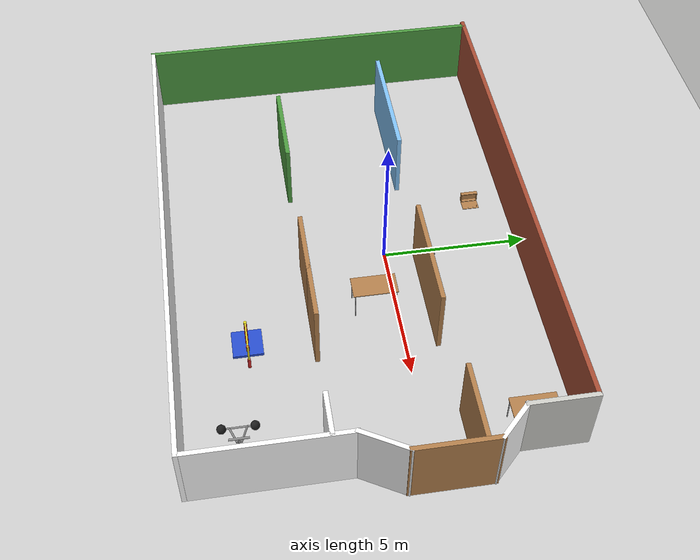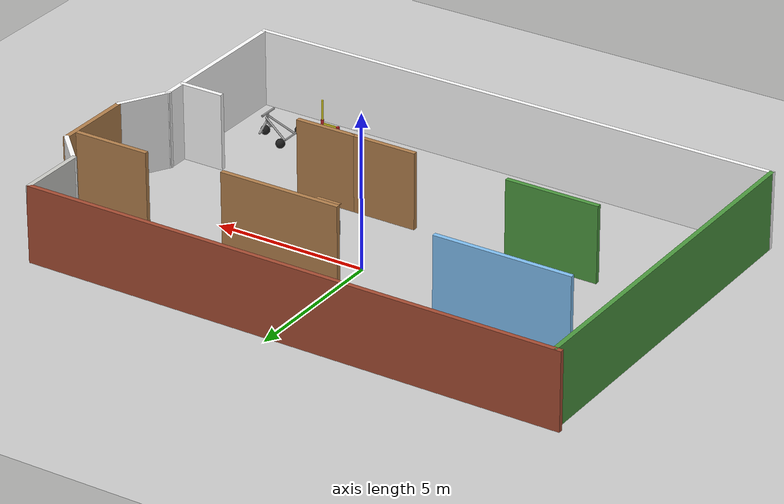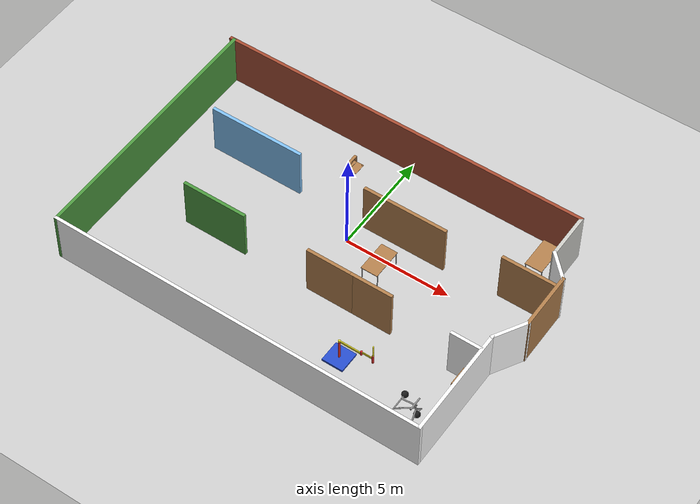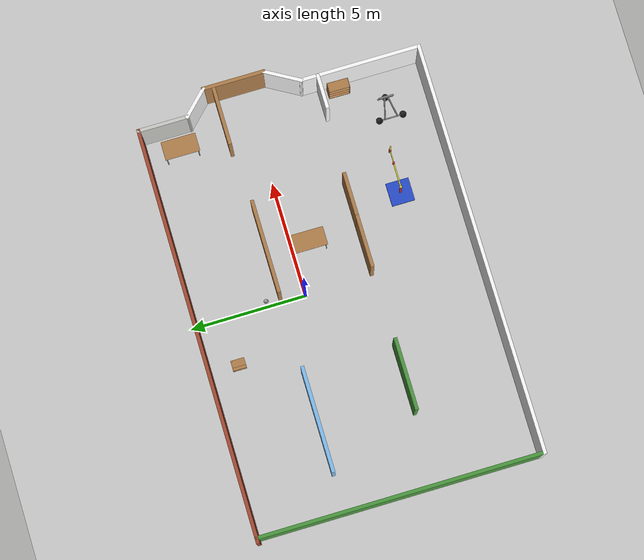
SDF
<sdf version="1.6">
 <world name="default">
  <model name="ground_plane">
   <static>1</static>
   <link name="link">
    <collision name="collision">
     <geometry><plane><normal>0 0 1</normal><size>100 100</size></plane></geometry>
     <surface>
      <contact><collide_bitmask>65535</collide_bitmask></contact>
      <friction><ode><mu>100</mu><mu2>50</mu2></ode></friction>
     </surface>
    </collision>
    <visual name="visual">
     <cast_shadows>0</cast_shadows>
     <geometry><plane><normal>0 0 1</normal><size>100 100</size></plane></geometry>
     <material>
      <script><uri>file://media/materials/scripts/gazebo.material</uri><name>Gazebo/Grey</name></script>
     </material>
    </visual>
   </link>
  </model>
  <model name="mybuilding">
   <pose>-0.077377 -1.31008 0 0 -0 0</pose>
   <link name="Wall_10">
    <collision name="Wall_10_Collision">
     <geometry><box><size>17.75 0.15 2.5</size></box></geometry>
     <pose>0 0 1.25 0 -0 0</pose>
    </collision>
    <visual name="Wall_10_Visual">
     <pose>0 0 1.25 0 -0 0</pose>
     <geometry><box><size>17.75 0.15 2.5</size></box></geometry>
     <material>
      <script><uri>file://media/materials/scripts/gazebo.material</uri><name>Gazebo/Bricks</name></script>
      <ambient>1 1 1 1</ambient>
     </material>
     <meta><layer>0</layer></meta>
    </visual>
    <pose>-0.49283 6.05016 0 0 -0 0</pose>
   </link>
   <link name="Wall_11">
    <collision name="Wall_11_Collision">
     <geometry><box><size>2.25 0.15 2.5</size></box></geometry>
     <pose>0 0 1.25 0 -0 0</pose>
    </collision>
    <visual name="Wall_11_Visual">
     <pose>0 0 1.25 0 -0 0</pose>
     <geometry><box><size>2.25 0.15 2.5</size></box></geometry>
     <material>
      <script><uri>file://media/materials/scripts/gazebo.material</uri><name>Gazebo/CeilingTiled</name></script>
      <ambient>1 1 1 1</ambient>
     </material>
     <meta><layer>0</layer></meta>
    </visual>
    <pose>8.30717 5.00016 0 0 0 -1.5708</pose>
   </link>
   <link name="Wall_12">
    <collision name="Wall_12_Collision">
     <geometry><box><size>1.5 0.15 2.5</size></box></geometry>
     <pose>0 0 1.25 0 -0 0</pose>
    </collision>
    <visual name="Wall_12_Visual">
     <pose>0 0 1.25 0 -0 0</pose>
     <geometry><box><size>1.5 0.15 2.5</size></box></geometry>
     <material>
      <script><uri>file://media/materials/scripts/gazebo.material</uri><name>Gazebo/Secondary</name></script>
      <ambient>1 1 1 1</ambient>
     </material>
     <meta><layer>0</layer></meta>
    </visual>
    <pose>8.78447 3.47287 0 0 0 -0.785398</pose>
   </link>
   <link name="Wall_13">
    <collision name="Wall_13_Collision">
     <geometry><box><size>2.75 0.15 2.5</size></box></geometry>
     <pose>0 0 1.25 0 -0 0</pose>
    </collision>
    <visual name="Wall_13_Visual">
     <pose>0 0 1.25 0 -0 0</pose>
     <geometry><box><size>2.75 0.15 2.5</size></box></geometry>
     <material>
      <script><uri>file://media/materials/scripts/gazebo.material</uri><name>Gazebo/WoodPallet</name></script>
      <ambient>1 1 1 1</ambient>
     </material>
     <meta><layer>0</layer></meta>
    </visual>
    <pose>9.26177 1.69557 0 0 0 -1.5708</pose>
   </link>
   <link name="Wall_14">
    <collision name="Wall_14_Collision">
     <geometry><box><size>1.75 0.15 2.5</size></box></geometry>
     <pose>0 0 1.25 0 -0 0</pose>
    </collision>
    <visual name="Wall_14_Visual">
     <pose>0 0 1.25 0 -0 0</pose>
     <geometry><box><size>1.75 0.15 2.5</size></box></geometry>
     <material>
      <script><uri>file://media/materials/scripts/gazebo.material</uri><name>Gazebo/Primary</name></script>
      <ambient>1 1 1 1</ambient>
     </material>
     <meta><layer>0</layer></meta>
    </visual>
    <pose>8.86176 -0.297251 0 0 0 -2.0944</pose>
   </link>
   <link name="Wall_15">
    <collision name="Wall_15_Collision">
     <geometry><box><size>5.25 0.15 2.5</size></box></geometry>
     <pose>0 0 1.25 0 -0 0</pose>
    </collision>
    <visual name="Wall_15_Visual">
     <pose>0 0 1.25 0 -0 0</pose>
     <geometry><box><size>5.25 0.15 2.5</size></box></geometry>
     <material>
      <script><uri>file://media/materials/scripts/gazebo.material</uri><name>Gazebo/Tertiary</name></script>
      <ambient>1 1 1 1</ambient>
     </material>
     <meta><layer>0</layer></meta>
    </visual>
    <pose>8.46176 -3.54007 0 0 0 -1.5708</pose>
   </link>
   <link name="Wall_16">
    <collision name="Wall_16_Collision">
     <geometry><box><size>17.75 0.15 2.5</size></box></geometry>
     <pose>0 0 1.25 0 -0 0</pose>
    </collision>
    <visual name="Wall_16_Visual">
     <pose>0 0 1.25 0 -0 0</pose>
     <geometry><box><size>17.75 0.15 2.5</size></box></geometry>
     <material>
      <script><uri>file://media/materials/scripts/gazebo.material</uri><name>Gazebo/CoM</name></script>
      <ambient>1 1 1 1</ambient>
     </material>
     <meta><layer>0</layer></meta>
    </visual>
    <pose>-0.338236 -6.09007 0 0 -0 3.14159</pose>
   </link>
   <link name="Wall_17">
    <collision name="Wall_17_Collision">
     <geometry><box><size>12.25 0.15 2.5</size></box></geometry>
     <pose>0 0 1.25 0 -0 0</pose>
    </collision>
    <visual name="Wall_17_Visual">
     <pose>0 0 1.25 0 -0 0</pose>
     <geometry><box><size>12.25 0.15 2.5</size></box></geometry>
     <material>
      <script><uri>file://media/materials/scripts/gazebo.material</uri><name>Gazebo/Grass</name></script>
      <ambient>1 1 1 1</ambient>
     </material>
     <meta><layer>0</layer></meta>
    </visual>
    <pose>-9.13824 -0.040072 0 0 -0 1.5708</pose>
   </link>
   <link name="Wall_27">
    <collision name="Wall_27_Collision">
     <geometry><box><size>3.067 0.15 2.5</size></box></geometry>
     <pose>0 0 1.25 0 -0 0</pose>
    </collision>
    <visual name="Wall_27_Visual">
     <pose>0 0 1.25 0 -0 0</pose>
     <geometry><box><size>3.067 0.15 2.5</size></box></geometry>
     <material>
      <script><uri>file://media/materials/scripts/gazebo.material</uri><name>Gazebo/Grass</name></script>
      <ambient>1 1 1 1</ambient>
     </material>
     <meta><layer>0</layer></meta>
    </visual>
    <pose>-4.48112 -1.63592 0 0 -0 3.14159</pose>
   </link>
   <link name="Wall_45">
    <collision name="Wall_45_Collision">
     <geometry><box><size>2.25 0.15 2.5</size></box></geometry>
     <pose>0 0 1.25 0 -0 0</pose>
    </collision>
    <visual name="Wall_45_Visual">
     <pose>0 0 1.25 0 -0 0</pose>
     <geometry><box><size>2.25 0.15 2.5</size></box></geometry>
     <material>
      <script><uri>file://media/materials/scripts/gazebo.material</uri><name>Gazebo/WoodPallet</name></script>
      <ambient>1 1 1 1</ambient>
     </material>
     <meta><layer>0</layer></meta>
    </visual>
    <pose>1.24538 -1.59592 0 0 -0 3.14159</pose>
   </link>
   <link name="Wall_47">
    <collision name="Wall_47_Collision">
     <geometry><box><size>2 0.15 2.5</size></box></geometry>
     <pose>0 0 1.25 0 -0 0</pose>
    </collision>
    <visual name="Wall_47_Visual">
     <pose>0 0 1.25 0 -0 0</pose>
     <geometry><box><size>2 0.15 2.5</size></box></geometry>
     <material>
      <script><uri>file://media/materials/scripts/gazebo.material</uri><name>Gazebo/WoodFloor</name></script>
      <ambient>1 1 1 1</ambient>
     </material>
     <meta><layer>0</layer></meta>
    </visual>
    <pose>3.22038 -1.59592 0 0 -0 0</pose>
   </link>
   <link name="Wall_49">
    <collision name="Wall_49_Collision">
     <geometry><box><size>1.5 0.15 2.5</size></box></geometry>
     <pose>0 0 1.25 0 -0 0</pose>
    </collision>
    <visual name="Wall_49_Visual">
     <pose>0 0 1.25 0 -0 0</pose>
     <geometry><box><size>1.5 0.15 2.5</size></box></geometry>
     <material>
      <script><uri>file://media/materials/scripts/gazebo.material</uri><name>Gazebo/Footway</name></script>
      <ambient>1 1 1 1</ambient>
     </material>
     <meta><layer>0</layer></meta>
    </visual>
    <pose>7.76668 -1.71731 0 0 -0 0</pose>
   </link>
   <link name="Wall_53">
    <collision name="Wall_53_Collision">
     <geometry><box><size>2.5 0.15 2.5</size></box></geometry>
     <pose>0 0 1.25 0 -0 0</pose>
    </collision>
    <visual name="Wall_53_Visual">
     <pose>0 0 1.25 0 -0 0</pose>
     <geometry><box><size>2.5 0.15 2.5</size></box></geometry>
     <material>
      <script><uri>file://media/materials/scripts/gazebo.material</uri><name>Gazebo/Wood</name></script>
      <ambient>1 1 1 1</ambient>
     </material>
     <meta><layer>0</layer></meta>
    </visual>
    <pose>7.94303 2.57098 0 0 -0 0</pose>
   </link>
   <link name="Wall_55">
    <collision name="Wall_55_Collision">
     <geometry><box><size>4 0.15 2.5</size></box></geometry>
     <pose>0 0 1.25 0 -0 0</pose>
    </collision>
    <visual name="Wall_55_Visual">
     <pose>0 0 1.25 0 -0 0</pose>
     <geometry><box><size>4 0.15 2.5</size></box></geometry>
     <material>
      <script><uri>file://media/materials/scripts/gazebo.material</uri><name>Gazebo/Wood</name></script>
      <ambient>1 1 1 1</ambient>
     </material>
     <meta><layer>0</layer></meta>
    </visual>
    <pose>2.1875 2.3687 0 0 -0 3.14159</pose>
   </link>
   <link name="Wall_66">
    <collision name="Wall_66_Collision">
     <geometry><box><size>4.5 0.15 2.5</size></box></geometry>
     <pose>0 0 1.25 0 -0 0</pose>
    </collision>
    <visual name="Wall_66_Visual">
     <pose>0 0 1.25 0 -0 0</pose>
     <geometry><box><size>4.5 0.15 2.5</size></box></geometry>
     <material>
      <script><uri>file://media/materials/scripts/gazebo.material</uri><name>Gazebo/SkyBlue</name></script>
      <ambient>1 1 1 1</ambient>
     </material>
     <meta><layer>0</layer></meta>
    </visual>
    <pose>-5.23767 2.32825 0 0 -0 3.14159</pose>
   </link>
   <static>1</static>
  </model>
  <model name="table_clone_2">
   <static>1</static>
   <link name="link">
    <collision name="surface">
     <pose>0 0 1 0 -0 0</pose>
     <geometry><box><size>1.5 0.8 0.03</size></box></geometry>
     <surface><friction><ode><mu>0.6</mu><mu2>0.6</mu2></ode></friction></surface>
    </collision>
    <visual name="visual1">
     <pose>0 0 1 0 -0 0</pose>
     <geometry><box><size>1.5 0.8 0.03</size></box></geometry>
     <material>
      <script><uri>file://media/materials/scripts/gazebo.material</uri><name>Gazebo/Wood</name></script>
     </material>
    </visual>
    <collision name="front_left_leg">
     <pose>0.68 0.38 0.5 0 -0 0</pose>
     <geometry><cylinder><radius>0.02</radius><length>1</length></cylinder></geometry>
    </collision>
    <visual name="front_left_leg">
     <pose>0.68 0.38 0.5 0 -0 0</pose>
     <geometry><cylinder><radius>0.02</radius><length>1</length></cylinder></geometry>
     <material>
      <script><uri>file://media/materials/scripts/gazebo.material</uri><name>Gazebo/Grey</name></script>
     </material>
    </visual>
    <collision name="front_right_leg">
     <pose>0.68 -0.38 0.5 0 -0 0</pose>
     <geometry><cylinder><radius>0.02</radius><length>1</length></cylinder></geometry>
    </collision>
    <visual name="front_right_leg">
     <pose>0.68 -0.38 0.5 0 -0 0</pose>
     <geometry><cylinder><radius>0.02</radius><length>1</length></cylinder></geometry>
     <material>
      <script><uri>file://media/materials/scripts/gazebo.material</uri><name>Gazebo/Grey</name></script>
     </material>
    </visual>
    <collision name="back_right_leg">
     <pose>-0.68 -0.38 0.5 0 -0 0</pose>
     <geometry><cylinder><radius>0.02</radius><length>1</length></cylinder></geometry>
    </collision>
    <visual name="back_right_leg">
     <pose>-0.68 -0.38 0.5 0 -0 0</pose>
     <geometry><cylinder><radius>0.02</radius><length>1</length></cylinder></geometry>
     <material>
      <script><uri>file://media/materials/scripts/gazebo.material</uri><name>Gazebo/Grey</name></script>
     </material>
    </visual>
    <collision name="back_left_leg">
     <pose>-0.68 0.38 0.5 0 -0 0</pose>
     <geometry><cylinder><radius>0.02</radius><length>1</length></cylinder></geometry>
    </collision>
    <visual name="back_left_leg">
     <pose>-0.68 0.38 0.5 0 -0 0</pose>
     <geometry><cylinder><radius>0.02</radius><length>1</length></cylinder></geometry>
     <material>
      <script><uri>file://media/materials/scripts/gazebo.material</uri><name>Gazebo/Grey</name></script>
     </material>
    </visual>
   </link>
   <pose>2.09551 -0.734988 0 0 0 -1.57312</pose>
  </model>
  <model name="table_clone_4">
   <static>1</static>
   <link name="link">
    <collision name="surface">
     <pose>0 0 1 0 -0 0</pose>
     <geometry><box><size>1.5 0.8 0.03</size></box></geometry>
     <surface><friction><ode><mu>0.6</mu><mu2>0.6</mu2></ode></friction></surface>
    </collision>
    <visual name="visual1">
     <pose>0 0 1 0 -0 0</pose>
     <geometry><box><size>1.5 0.8 0.03</size></box></geometry>
     <material>
      <script><uri>file://media/materials/scripts/gazebo.material</uri><name>Gazebo/Wood</name></script>
     </material>
    </visual>
    <collision name="front_left_leg">
     <pose>0.68 0.38 0.5 0 -0 0</pose>
     <geometry><cylinder><radius>0.02</radius><length>1</length></cylinder></geometry>
    </collision>
    <visual name="front_left_leg">
     <pose>0.68 0.38 0.5 0 -0 0</pose>
     <geometry><cylinder><radius>0.02</radius><length>1</length></cylinder></geometry>
     <material>
      <script><uri>file://media/materials/scripts/gazebo.material</uri><name>Gazebo/Grey</name></script>
     </material>
    </visual>
    <collision name="front_right_leg">
     <pose>0.68 -0.38 0.5 0 -0 0</pose>
     <geometry><cylinder><radius>0.02</radius><length>1</length></cylinder></geometry>
    </collision>
    <visual name="front_right_leg">
     <pose>0.68 -0.38 0.5 0 -0 0</pose>
     <geometry><cylinder><radius>0.02</radius><length>1</length></cylinder></geometry>
     <material>
      <script><uri>file://media/materials/scripts/gazebo.material</uri><name>Gazebo/Grey</name></script>
     </material>
    </visual>
    <collision name="back_right_leg">
     <pose>-0.68 -0.38 0.5 0 -0 0</pose>
     <geometry><cylinder><radius>0.02</radius><length>1</length></cylinder></geometry>
    </collision>
    <visual name="back_right_leg">
     <pose>-0.68 -0.38 0.5 0 -0 0</pose>
     <geometry><cylinder><radius>0.02</radius><length>1</length></cylinder></geometry>
     <material>
      <script><uri>file://media/materials/scripts/gazebo.material</uri><name>Gazebo/Grey</name></script>
     </material>
    </visual>
    <collision name="back_left_leg">
     <pose>-0.68 0.38 0.5 0 -0 0</pose>
     <geometry><cylinder><radius>0.02</radius><length>1</length></cylinder></geometry>
    </collision>
    <visual name="back_left_leg">
     <pose>-0.68 0.38 0.5 0 -0 0</pose>
     <geometry><cylinder><radius>0.02</radius><length>1</length></cylinder></geometry>
     <material>
      <script><uri>file://media/materials/scripts/gazebo.material</uri><name>Gazebo/Grey</name></script>
     </material>
    </visual>
   </link>
   <pose>7.4382 3.26988 0 0 0 -1.57312</pose>
  </model>
  <model name="my_sphere">
   <link name="link">
    <inertial>
     <mass>1</mass>
     <inertia><ixx>0.1</ixx><ixy>0</ixy><ixz>0</ixz><iyy>0.1</iyy><iyz>0</iyz><izz>0.1</izz></inertia>
    </inertial>
    <visual name="visual">
     <geometry><sphere><radius>0.1</radius></sphere></geometry>
     <material>
      <script><name>Gazebo/Grey</name><uri>file://media/materials/scripts/gazebo.material</uri></script>
      <shader type="pixel"><normal_map>__default__</normal_map></shader>
      <ambient>1 1 1 1</ambient>
      <diffuse>1 1 1 1</diffuse>
      <specular>1 1 1 1</specular>
      <emissive>1 1 1 1</emissive>
     </material>
    </visual>
    <collision name="collision">
     <geometry><sphere><radius>0.1</radius></sphere></geometry>
     <surface>
      <friction>
       <ode><mu>1</mu><mu2>1</mu2><fdir1>0 0 0</fdir1><slip1>0</slip1><slip2>0</slip2></ode>
       <torsional>
        <coefficient>1</coefficient>
        <patch_radius>0</patch_radius>
        <surface_radius>0</surface_radius>
        <use_patch_radius>1</use_patch_radius>
        <ode><slip>0</slip></ode>
       </torsional>
      </friction>
      <bounce><restitution_coefficient>0</restitution_coefficient><threshold>1e+06</threshold></bounce>
      <contact>
       <collide_without_contact>0</collide_without_contact>
       <collide_without_contact_bitmask>1</collide_without_contact_bitmask>
       <collide_bitmask>1</collide_bitmask>
       <ode>
        <soft_cfm>0</soft_cfm>
        <soft_erp>0.2</soft_erp>
        <kp>1e+13</kp>
        <kd>1</kd>
        <max_vel>0.01</max_vel>
        <min_depth>0</min_depth>
       </ode>
       <bullet>
        <split_impulse>1</split_impulse>
        <split_impulse_penetration_threshold>-0.01</split_impulse_penetration_threshold>
        <soft_cfm>0</soft_cfm>
        <soft_erp>0.2</soft_erp>
        <kp>1e+13</kp>
        <kd>1</kd>
       </bullet>
      </contact>
     </surface>
    </collision>
   </link>
   <static>0</static>
   <pose>0.251743 1.65501 0.1 0 -0 0</pose>
  </model>
  <model name="simple_arm">
   <link name="arm_base">
    <inertial>
     <pose>0 0 0.00099 0 -0 0</pose>
     <inertia><ixx>1.11</ixx><ixy>0</ixy><ixz>0</ixz><iyy>100.11</iyy><iyz>0</iyz><izz>1.01</izz></inertia>
     <mass>101</mass>
    </inertial>
    <collision name="arm_base_geom">
     <pose>0 0 0.05 0 -0 0</pose>
     <geometry><box><size>1 1 0.1</size></box></geometry>
    </collision>
    <visual name="arm_base_geom_visual">
     <pose>0 0 0.05 0 -0 0</pose>
     <geometry><box><size>1 1 0.1</size></box></geometry>
     <material>
      <script><uri>file://media/materials/scripts/gazebo.material</uri><name>Gazebo/Blue</name></script>
     </material>
    </visual>
    <collision name="arm_base_geom_arm_trunk">
     <pose>0 0 0.6 0 -0 0</pose>
     <geometry><cylinder><radius>0.05</radius><length>1</length></cylinder></geometry>
    </collision>
    <visual name="arm_base_geom_arm_trunk_visual">
     <pose>0 0 0.6 0 -0 0</pose>
     <geometry><cylinder><radius>0.05</radius><length>1</length></cylinder></geometry>
     <material>
      <script><uri>file://media/materials/scripts/gazebo.material</uri><name>Gazebo/Red</name></script>
     </material>
    </visual>
   </link>
   <link name="arm_shoulder_pan">
    <pose>0 0 1.1 0 -0 0</pose>
    <inertial>
     <pose>0.045455 0 0 0 -0 0</pose>
     <inertia><ixx>0.011</ixx><ixy>0</ixy><ixz>0</ixz><iyy>0.0225</iyy><iyz>0</iyz><izz>0.0135</izz></inertia>
     <mass>1.1</mass>
    </inertial>
    <collision name="arm_shoulder_pan_geom">
     <pose>0 0 0.05 0 -0 0</pose>
     <geometry><cylinder><radius>0.05</radius><length>0.1</length></cylinder></geometry>
    </collision>
    <visual name="arm_shoulder_pan_geom_visual">
     <pose>0 0 0.05 0 -0 0</pose>
     <geometry><cylinder><radius>0.05</radius><length>0.1</length></cylinder></geometry>
     <material>
      <script><uri>file://media/materials/scripts/gazebo.material</uri><name>Gazebo/Yellow</name></script>
     </material>
    </visual>
    <collision name="arm_shoulder_pan_geom_arm_shoulder">
     <pose>0.55 0 0.05 0 -0 0</pose>
     <geometry><box><size>1 0.05 0.1</size></box></geometry>
    </collision>
    <visual name="arm_shoulder_pan_geom_arm_shoulder_visual">
     <pose>0.55 0 0.05 0 -0 0</pose>
     <geometry><box><size>1 0.05 0.1</size></box></geometry>
     <material>
      <script><uri>file://media/materials/scripts/gazebo.material</uri><name>Gazebo/Yellow</name></script>
     </material>
    </visual>
   </link>
   <link name="arm_elbow_pan">
    <pose>1.05 0 1.1 0 -0 0</pose>
    <inertial>
     <pose>0.0875 0 0.083333 0 -0 0</pose>
     <inertia>
      <ixx>0.031</ixx>
      <ixy>0</ixy>
      <ixz>0.005</ixz>
      <iyy>0.07275</iyy>
      <iyz>0</iyz>
      <izz>0.04475</izz>
     </inertia>
     <mass>1.2</mass>
    </inertial>
    <collision name="arm_elbow_pan_geom">
     <pose>0 0 0.1 0 -0 0</pose>
     <geometry><cylinder><radius>0.05</radius><length>0.2</length></cylinder></geometry>
    </collision>
    <visual name="arm_elbow_pan_geom_visual">
     <pose>0 0 0.1 0 -0 0</pose>
     <geometry><cylinder><radius>0.05</radius><length>0.2</length></cylinder></geometry>
     <material>
      <script><uri>file://media/materials/scripts/gazebo.material</uri><name>Gazebo/Red</name></script>
     </material>
    </visual>
    <collision name="arm_elbow_pan_geom_arm_elbow">
     <pose>0.3 0 0.15 0 -0 0</pose>
     <geometry><box><size>0.5 0.03 0.1</size></box></geometry>
    </collision>
    <visual name="arm_elbow_pan_geom_arm_elbow_visual">
     <pose>0.3 0 0.15 0 -0 0</pose>
     <geometry><box><size>0.5 0.03 0.1</size></box></geometry>
     <material>
      <script><uri>file://media/materials/scripts/gazebo.material</uri><name>Gazebo/Yellow</name></script>
     </material>
    </visual>
    <collision name="arm_elbow_pan_geom_arm_wrist">
     <pose>0.55 0 0.15 0 -0 0</pose>
     <geometry><cylinder><radius>0.05</radius><length>0.3</length></cylinder></geometry>
    </collision>
    <visual name="arm_elbow_pan_geom_arm_wrist_visual">
     <pose>0.55 0 0.15 0 -0 0</pose>
     <geometry><cylinder><radius>0.05</radius><length>0.3</length></cylinder></geometry>
     <material>
      <script><uri>file://media/materials/scripts/gazebo.material</uri><name>Gazebo/Red</name></script>
     </material>
    </visual>
   </link>
   <link name="arm_wrist_lift">
    <pose>1.6 0 1.05 0 -0 0</pose>
    <inertial>
     <inertia><ixx>0.01</ixx><ixy>0</ixy><ixz>0</ixz><iyy>0.01</iyy><iyz>0</iyz><izz>0.001</izz></inertia>
     <mass>0.1</mass>
    </inertial>
    <collision name="arm_wrist_lift_geom">
     <pose>0 0 0.5 0 -0 0</pose>
     <geometry><cylinder><radius>0.03</radius><length>1</length></cylinder></geometry>
    </collision>
    <visual name="arm_wrist_lift_geom_visual">
     <pose>0 0 0.5 0 -0 0</pose>
     <geometry><cylinder><radius>0.03</radius><length>1</length></cylinder></geometry>
     <material>
      <script><uri>file://media/materials/scripts/gazebo.material</uri><name>Gazebo/Yellow</name></script>
     </material>
    </visual>
   </link>
   <link name="arm_wrist_roll">
    <pose>1.6 0 1 0 -0 0</pose>
    <inertial>
     <inertia><ixx>0.01</ixx><ixy>0</ixy><ixz>0</ixz><iyy>0.01</iyy><iyz>0</iyz><izz>0.001</izz></inertia>
     <mass>0.1</mass>
    </inertial>
    <collision name="arm_wrist_roll_geom">
     <pose>0 0 0.025 0 -0 0</pose>
     <geometry><cylinder><radius>0.05</radius><length>0.05</length></cylinder></geometry>
    </collision>
    <visual name="arm_wrist_roll_geom_visual">
     <pose>0 0 0.025 0 -0 0</pose>
     <geometry><cylinder><radius>0.05</radius><length>0.05</length></cylinder></geometry>
     <material>
      <script><uri>file://media/materials/scripts/gazebo.material</uri><name>Gazebo/Red</name></script>
     </material>
    </visual>
   </link>
   <joint name="arm_shoulder_pan_joint" type="revolute">
    <parent>arm_base</parent>
    <child>arm_shoulder_pan</child>
    <axis>
     <dynamics>
      <damping>1</damping>
      <friction>0</friction>
      <spring_reference>0</spring_reference>
      <spring_stiffness>0</spring_stiffness>
     </dynamics>
     <xyz>0 0 1</xyz>
     <use_parent_model_frame>1</use_parent_model_frame>
     <limit><lower>-1e+16</lower><upper>1e+16</upper></limit>
    </axis>
   </joint>
   <joint name="arm_elbow_pan_joint" type="revolute">
    <parent>arm_shoulder_pan</parent>
    <child>arm_elbow_pan</child>
    <axis>
     <dynamics>
      <damping>1</damping>
      <friction>0</friction>
      <spring_reference>0</spring_reference>
      <spring_stiffness>0</spring_stiffness>
     </dynamics>
     <xyz>0 0 1</xyz>
     <use_parent_model_frame>1</use_parent_model_frame>
     <limit><lower>-1e+16</lower><upper>1e+16</upper></limit>
    </axis>
   </joint>
   <joint name="arm_wrist_lift_joint" type="prismatic">
    <parent>arm_elbow_pan</parent>
    <child>arm_wrist_lift</child>
    <axis>
     <dynamics>
      <damping>1</damping>
      <friction>0</friction>
      <spring_reference>0</spring_reference>
      <spring_stiffness>0</spring_stiffness>
     </dynamics>
     <limit><lower>-0.8</lower><upper>0.1</upper></limit>
     <xyz>0 0 1</xyz>
     <use_parent_model_frame>1</use_parent_model_frame>
    </axis>
   </joint>
   <joint name="arm_wrist_roll_joint" type="revolute">
    <parent>arm_wrist_lift</parent>
    <child>arm_wrist_roll</child>
    <axis>
     <dynamics>
      <damping>1</damping>
      <friction>0</friction>
      <spring_reference>0</spring_reference>
      <spring_stiffness>0</spring_stiffness>
     </dynamics>
     <limit><lower>-2.99999</lower><upper>2.99999</upper></limit>
     <xyz>0 0 1</xyz>
     <use_parent_model_frame>1</use_parent_model_frame>
    </axis>
   </joint>
   <pose>3.12467 -5.08041 0 0 0 -0.000925</pose>
  </model>
  <model name="trisphere_cycle">
   <link name="frame">
    <pose>-0.408559 0 0.385023 0 -0.522021 0</pose>
    <inertial>
     <mass>10</mass>
     <inertia><ixx>0.228</ixx><iyy>0.743521</iyy><izz>0.965521</izz><ixy>0</ixy><ixz>0</ixz><iyz>0</iyz></inertia>
    </inertial>
    <collision name="axle_collision">
     <pose>-0.471335 0 0 1.5708 -0 0</pose>
     <geometry><cylinder><length>1.03923</length><radius>0.03</radius></cylinder></geometry>
    </collision>
    <visual name="axle_visual">
     <pose>-0.471335 0 0 1.5708 -0 0</pose>
     <geometry><cylinder><length>1.03923</length><radius>0.03</radius></cylinder></geometry>
     <material>
      <script><uri>file://media/materials/scripts/gazebo.material</uri><name>Gazebo/Grey</name></script>
     </material>
    </visual>
    <collision name="frame_left_collision">
     <pose>0 0.171552 0 2.986 1.57079 2.76675</pose>
     <geometry><cylinder><length>1.00317</length><radius>0.03</radius></cylinder></geometry>
    </collision>
    <visual name="frame_left_visual">
     <pose>0 0.171552 0 2.986 1.57079 2.76675</pose>
     <geometry><cylinder><length>1.00317</length><radius>0.03</radius></cylinder></geometry>
     <material>
      <script><uri>file://media/materials/scripts/gazebo.material</uri><name>Gazebo/Grey</name></script>
     </material>
    </visual>
    <collision name="frame_right_collision">
     <pose>0 -0.171552 0 -2.986 1.57079 -2.76675</pose>
     <geometry><cylinder><length>1.00317</length><radius>0.03</radius></cylinder></geometry>
    </collision>
    <visual name="frame_right_visual">
     <pose>0 -0.171552 0 -2.986 1.57079 -2.76675</pose>
     <geometry><cylinder><length>1.00317</length><radius>0.03</radius></cylinder></geometry>
     <material>
      <script><uri>file://media/materials/scripts/gazebo.material</uri><name>Gazebo/Grey</name></script>
     </material>
    </visual>
   </link>
   <link name="fork">
    <pose>0.041441 0 0.385023 0 -0.174533 0</pose>
    <inertial>
     <mass>3</mass>
     <inertia>
      <ixx>0.158203</ixx>
      <iyy>0.0583594</iyy>
      <izz>0.102656</izz>
      <ixy>0</ixy>
      <ixz>0</ixz>
      <iyz>0</iyz>
     </inertia>
    </inertial>
    <collision name="handlebars_collision">
     <pose>0 0 0.397748 1.5708 -0 0</pose>
     <geometry><cylinder><length>0.636396</length><radius>0.0375</radius></cylinder></geometry>
    </collision>
    <visual name="handlebars_visual">
     <pose>0 0 0.397748 1.5708 -0 0</pose>
     <geometry><cylinder><length>0.636396</length><radius>0.0375</radius></cylinder></geometry>
     <material>
      <script><uri>file://media/materials/scripts/gazebo.material</uri><name>Gazebo/Grey</name></script>
     </material>
    </visual>
    <collision name="headtube_collision">
     <pose>0 0 0.238649 0 -0 0</pose>
     <geometry><cylinder><length>0.318198</length><radius>0.0375</radius></cylinder></geometry>
    </collision>
    <visual name="headtube_visual">
     <pose>0 0 0.238649 0 -0 0</pose>
     <geometry><cylinder><length>0.318198</length><radius>0.0375</radius></cylinder></geometry>
     <material>
      <script><uri>file://media/materials/scripts/gazebo.material</uri><name>Gazebo/Grey</name></script>
     </material>
    </visual>
    <collision name="spindle_collision">
     <pose>0 0 -0.238649 1.5708 -0 0</pose>
     <geometry><cylinder><length>0.636396</length><radius>0.015</radius></cylinder></geometry>
    </collision>
    <visual name="spindle_visual">
     <pose>0 0 -0.238649 1.5708 -0 0</pose>
     <geometry><cylinder><length>0.636396</length><radius>0.015</radius></cylinder></geometry>
     <material>
      <script><uri>file://media/materials/scripts/gazebo.material</uri><name>Gazebo/Grey</name></script>
     </material>
    </visual>
    <collision name="fork_left_collision">
     <pose>0 0.159099 -0.07955 0.785398 -0 0</pose>
     <geometry><cylinder><length>0.45</length><radius>0.0375</radius></cylinder></geometry>
    </collision>
    <visual name="fork_left_visual">
     <pose>0 0.159099 -0.07955 0.785398 -0 0</pose>
     <geometry><cylinder><length>0.45</length><radius>0.0375</radius></cylinder></geometry>
     <material>
      <script><uri>file://media/materials/scripts/gazebo.material</uri><name>Gazebo/Grey</name></script>
     </material>
    </visual>
    <collision name="fork_right_collision">
     <pose>0 -0.159099 -0.07955 -0.785398 0 0</pose>
     <geometry><cylinder><length>0.45</length><radius>0.0375</radius></cylinder></geometry>
    </collision>
    <visual name="fork_right_visual">
     <pose>0 -0.159099 -0.07955 -0.785398 0 0</pose>
     <geometry><cylinder><length>0.45</length><radius>0.0375</radius></cylinder></geometry>
     <material>
      <script><uri>file://media/materials/scripts/gazebo.material</uri><name>Gazebo/Grey</name></script>
     </material>
    </visual>
   </link>
   <link name="wheel_front">
    <pose>0.082882 0 0.15 0 -0 0</pose>
    <inertial>
     <mass>0.5</mass>
     <inertia><ixx>0.0045</ixx><iyy>0.0045</iyy><izz>0.0045</izz><ixy>0</ixy><ixz>0</ixz><iyz>0</iyz></inertia>
    </inertial>
    <collision name="collision">
     <geometry><sphere><radius>0.15</radius></sphere></geometry>
     <surface><contact><ode><kp>1e+08</kp><kd>1</kd><min_depth>0.0005</min_depth></ode></contact></surface>
    </collision>
    <visual name="visual">
     <geometry><sphere><radius>0.15</radius></sphere></geometry>
     <material>
      <script><uri>file://media/materials/scripts/gazebo.material</uri><name>Gazebo/Black</name></script>
     </material>
    </visual>
   </link>
   <joint name="wheel_front_steer" type="revolute">
    <parent>frame</parent>
    <child>fork</child>
    <axis>
     <xyz>0 0 1</xyz>
     <limit><lower>-0.959931</lower><upper>0.959931</upper></limit>
     <use_parent_model_frame>0</use_parent_model_frame>
     <dynamics><spring_reference>0</spring_reference><spring_stiffness>0</spring_stiffness></dynamics>
    </axis>
   </joint>
   <joint name="wheel_front_spin" type="revolute">
    <parent>fork</parent>
    <child>wheel_front</child>
    <axis>
     <xyz>0 1 0</xyz>
     <use_parent_model_frame>0</use_parent_model_frame>
     <limit><lower>-1e+16</lower><upper>1e+16</upper></limit>
     <dynamics><spring_reference>0</spring_reference><spring_stiffness>0</spring_stiffness></dynamics>
    </axis>
   </joint>
   <link name="wheel_rear_left">
    <pose>-0.817118 0.519615 0.15 0 -0 0</pose>
    <inertial>
     <mass>0.5</mass>
     <inertia><ixx>0.0045</ixx><iyy>0.0045</iyy><izz>0.0045</izz><ixy>0</ixy><ixz>0</ixz><iyz>0</iyz></inertia>
    </inertial>
    <collision name="collision">
     <geometry><sphere><radius>0.15</radius></sphere></geometry>
     <surface><contact><ode><kp>1e+08</kp><kd>1</kd><min_depth>0.0005</min_depth></ode></contact></surface>
    </collision>
    <visual name="visual">
     <geometry><sphere><radius>0.15</radius></sphere></geometry>
     <material>
      <script><uri>file://media/materials/scripts/gazebo.material</uri><name>Gazebo/Black</name></script>
     </material>
    </visual>
   </link>
   <joint name="wheel_rear_left_spin" type="revolute">
    <parent>frame</parent>
    <child>wheel_rear_left</child>
    <axis>
     <xyz>0 1 0</xyz>
     <use_parent_model_frame>0</use_parent_model_frame>
     <limit><lower>-1e+16</lower><upper>1e+16</upper></limit>
     <dynamics><spring_reference>0</spring_reference><spring_stiffness>0</spring_stiffness></dynamics>
    </axis>
   </joint>
   <link name="wheel_rear_right">
    <pose>-0.817118 -0.519615 0.15 0 -0 0</pose>
    <inertial>
     <mass>0.5</mass>
     <inertia><ixx>0.0045</ixx><iyy>0.0045</iyy><izz>0.0045</izz><ixy>0</ixy><ixz>0</ixz><iyz>0</iyz></inertia>
    </inertial>
    <collision name="collision">
     <geometry><sphere><radius>0.15</radius></sphere></geometry>
     <surface><contact><ode><kp>1e+08</kp><kd>1</kd><min_depth>0.0005</min_depth></ode></contact></surface>
    </collision>
    <visual name="visual">
     <geometry><sphere><radius>0.15</radius></sphere></geometry>
     <material>
      <script><uri>file://media/materials/scripts/gazebo.material</uri><name>Gazebo/Black</name></script>
     </material>
    </visual>
   </link>
   <joint name="wheel_rear_right_spin" type="revolute">
    <parent>frame</parent>
    <child>wheel_rear_right</child>
    <axis>
     <xyz>0 1 0</xyz>
     <use_parent_model_frame>0</use_parent_model_frame>
     <limit><lower>-1e+16</lower><upper>1e+16</upper></limit>
     <dynamics><spring_reference>0</spring_reference><spring_stiffness>0</spring_stiffness></dynamics>
    </axis>
   </joint>
   <pose>7.11145 -5.63721 -0.000501 -0 1e-06 -0.000154</pose>
  </model>
  <model name="bookshelf">
   <static>1</static>
   <link name="link">
    <inertial><mass>1</mass></inertial>
    <collision name="back">
     <pose>0 0.005 0.6 0 -0 0</pose>
     <geometry><box><size>0.9 0.01 1.2</size></box></geometry>
    </collision>
    <visual name="visual1">
     <pose>0 0.005 0.6 0 -0 0</pose>
     <geometry><box><size>0.9 0.01 1.2</size></box></geometry>
     <material>
      <script><uri>file://media/materials/scripts/gazebo.material</uri><name>Gazebo/Wood</name></script>
     </material>
    </visual>
    <collision name="left_side">
     <pose>0.45 -0.195 0.6 0 -0 0</pose>
     <geometry><box><size>0.02 0.4 1.2</size></box></geometry>
    </collision>
    <visual name="visual2">
     <pose>0.45 -0.195 0.6 0 -0 0</pose>
     <geometry><box><size>0.02 0.4 1.2</size></box></geometry>
     <material>
      <script><uri>file://media/materials/scripts/gazebo.material</uri><name>Gazebo/Wood</name></script>
     </material>
    </visual>
    <collision name="right_side">
     <pose>-0.45 -0.195 0.6 0 -0 0</pose>
     <geometry><box><size>0.02 0.4 1.2</size></box></geometry>
    </collision>
    <visual name="visual3">
     <pose>-0.45 -0.195 0.6 0 -0 0</pose>
     <geometry><box><size>0.02 0.4 1.2</size></box></geometry>
     <material>
      <script><uri>file://media/materials/scripts/gazebo.material</uri><name>Gazebo/Wood</name></script>
     </material>
    </visual>
    <collision name="bottom">
     <pose>0 -0.195 0.03 0 -0 0</pose>
     <geometry><box><size>0.88 0.4 0.06</size></box></geometry>
    </collision>
    <visual name="visual4">
     <pose>0 -0.195 0.03 0 -0 0</pose>
     <geometry><box><size>0.88 0.4 0.06</size></box></geometry>
     <material>
      <script><uri>file://media/materials/scripts/gazebo.material</uri><name>Gazebo/Wood</name></script>
     </material>
    </visual>
    <collision name="top">
     <pose>0 -0.195 1.19 0 -0 0</pose>
     <geometry><box><size>0.88 0.4 0.02</size></box></geometry>
    </collision>
    <visual name="visual5">
     <pose>0 -0.195 1.19 0 -0 0</pose>
     <geometry><box><size>0.88 0.4 0.02</size></box></geometry>
     <material>
      <script><uri>file://media/materials/scripts/gazebo.material</uri><name>Gazebo/Wood</name></script>
     </material>
    </visual>
    <collision name="low_shelf">
     <pose>0 -0.195 0.43 0 -0 0</pose>
     <geometry><box><size>0.88 0.4 0.02</size></box></geometry>
    </collision>
    <visual name="visual6">
     <pose>0 -0.195 0.43 0 -0 0</pose>
     <geometry><box><size>0.88 0.4 0.02</size></box></geometry>
     <material>
      <script><uri>file://media/materials/scripts/gazebo.material</uri><name>Gazebo/Wood</name></script>
     </material>
    </visual>
    <collision name="high_shelf">
     <pose>0 -0.195 0.8 0 -0 0</pose>
     <geometry><box><size>0.88 0.4 0.02</size></box></geometry>
    </collision>
    <visual name="visual7">
     <pose>0 -0.195 0.8 0 -0 0</pose>
     <geometry><box><size>0.88 0.4 0.02</size></box></geometry>
     <material>
      <script><uri>file://media/materials/scripts/gazebo.material</uri><name>Gazebo/Wood</name></script>
     </material>
    </visual>
   </link>
   <pose>8.23427 -3.81928 0 0 0 -1.58515</pose>
  </model>
  <model name="wooden_case_wooden_peg">
   <link name="wooden_case::base">
    <pose>0 0 0.024 0 -0 0</pose>
    <inertial>
     <pose>-0.022184 0 0.171592 0 -0 0</pose>
     <mass>3.96264</mass>
     <inertia>
      <ixx>0.213536</ixx>
      <ixy>0</ixy>
      <ixz>0.000779377</ixz>
      <iyy>0.0708943</iyy>
      <iyz>0</iyz>
      <izz>0.154604</izz>
     </inertia>
    </inertial>
    <collision name="collision_back">
     <pose>-0.053975 0 0.1778 0 -0 0</pose>
     <geometry><box><size>0.01905 0.5461 0.3175</size></box></geometry>
     <surface>
      <contact>
       <poissons_ratio>0.347</poissons_ratio>
       <elastic_modulus>8.8e+09</elastic_modulus>
       <ode><kp>100000</kp><kd>100</kd><max_vel>100</max_vel><min_depth>0.001</min_depth></ode>
      </contact>
      <friction>
       <torsional>
        <coefficient>1</coefficient>
        <use_patch_radius>0</use_patch_radius>
        <surface_radius>0.01</surface_radius>
       </torsional>
      </friction>
     </surface>
    </collision>
    <visual name="visual_back">
     <pose>-0.053975 0 0.1778 0 -0 0</pose>
     <geometry><box><size>0.01905 0.5461 0.3175</size></box></geometry>
     <material>
      <script><uri>file://media/materials/scripts/gazebo.material</uri><name>Gazebo/Wood</name></script>
     </material>
    </visual>
    <collision name="collision_bottom">
     <pose>0 0 0.009525 0 -0 0</pose>
     <geometry><box><size>0.127 0.5842 0.01905</size></box></geometry>
     <surface>
      <contact>
       <poissons_ratio>0.347</poissons_ratio>
       <elastic_modulus>8.8e+09</elastic_modulus>
       <ode><kp>100000</kp><kd>100</kd><max_vel>100</max_vel><min_depth>0.001</min_depth></ode>
      </contact>
      <friction>
       <torsional>
        <coefficient>1</coefficient>
        <use_patch_radius>0</use_patch_radius>
        <surface_radius>0.01</surface_radius>
       </torsional>
      </friction>
     </surface>
    </collision>
    <visual name="visual_bottom">
     <pose>0 0 0.009525 0 -0 0</pose>
     <geometry><box><size>0.127 0.5842 0.01905</size></box></geometry>
     <material>
      <script><uri>file://media/materials/scripts/gazebo.material</uri><name>Gazebo/Wood</name></script>
     </material>
    </visual>
    <collision name="collision_top">
     <pose>0 0 0.346075 0 -0 0</pose>
     <geometry><box><size>0.127 0.5842 0.01905</size></box></geometry>
     <surface>
      <contact>
       <poissons_ratio>0.347</poissons_ratio>
       <elastic_modulus>8.8e+09</elastic_modulus>
       <ode><kp>100000</kp><kd>100</kd><max_vel>100</max_vel><min_depth>0.001</min_depth></ode>
      </contact>
      <friction>
       <torsional>
        <coefficient>1</coefficient>
        <use_patch_radius>0</use_patch_radius>
        <surface_radius>0.01</surface_radius>
       </torsional>
      </friction>
     </surface>
    </collision>
    <visual name="visual_top">
     <pose>0 0 0.346075 0 -0 0</pose>
     <geometry><box><size>0.127 0.5842 0.01905</size></box></geometry>
     <material>
      <script><uri>file://media/materials/scripts/gazebo.material</uri><name>Gazebo/Wood</name></script>
     </material>
    </visual>
    <collision name="collision_left">
     <pose>0 -0.282575 0.1778 0 -0 0</pose>
     <geometry><box><size>0.127 0.01905 0.3175</size></box></geometry>
     <surface>
      <contact>
       <poissons_ratio>0.347</poissons_ratio>
       <elastic_modulus>8.8e+09</elastic_modulus>
       <ode><kp>100000</kp><kd>100</kd><max_vel>100</max_vel><min_depth>0.001</min_depth></ode>
      </contact>
      <friction>
       <torsional>
        <coefficient>1</coefficient>
        <use_patch_radius>0</use_patch_radius>
        <surface_radius>0.01</surface_radius>
       </torsional>
      </friction>
     </surface>
    </collision>
    <visual name="visual_left">
     <pose>0 -0.282575 0.1778 0 -0 0</pose>
     <geometry><box><size>0.127 0.01905 0.3175</size></box></geometry>
     <material>
      <script><uri>file://media/materials/scripts/gazebo.material</uri><name>Gazebo/Wood</name></script>
     </material>
    </visual>
    <collision name="collision_right">
     <pose>0 0.282575 0.1778 0 -0 0</pose>
     <geometry><box><size>0.127 0.01905 0.3175</size></box></geometry>
     <surface>
      <contact>
       <poissons_ratio>0.347</poissons_ratio>
       <elastic_modulus>8.8e+09</elastic_modulus>
       <ode><kp>100000</kp><kd>100</kd><max_vel>100</max_vel><min_depth>0.001</min_depth></ode>
      </contact>
      <friction>
       <torsional>
        <coefficient>1</coefficient>
        <use_patch_radius>0</use_patch_radius>
        <surface_radius>0.01</surface_radius>
       </torsional>
      </friction>
     </surface>
    </collision>
    <visual name="visual_right">
     <pose>0 0.282575 0.1778 0 -0 0</pose>
     <geometry><box><size>0.127 0.01905 0.3175</size></box></geometry>
     <material>
      <script><uri>file://media/materials/scripts/gazebo.material</uri><name>Gazebo/Wood</name></script>
     </material>
    </visual>
    <collision name="collision_block_left">
     <pose>0.0095 -0.2151 -0.012 0 -0 0</pose>
     <geometry><box><size>0.108 0.05 0.024</size></box></geometry>
     <surface>
      <contact>
       <poissons_ratio>0.347</poissons_ratio>
       <elastic_modulus>8.8e+09</elastic_modulus>
       <ode><kp>100000</kp><kd>100</kd><max_vel>100</max_vel><min_depth>0.001</min_depth></ode>
      </contact>
      <friction>
       <torsional>
        <coefficient>1</coefficient>
        <use_patch_radius>0</use_patch_radius>
        <surface_radius>0.01</surface_radius>
       </torsional>
      </friction>
     </surface>
    </collision>
    <visual name="visual_block_left">
     <pose>0.0095 -0.2151 -0.012 0 -0 0</pose>
     <geometry><box><size>0.108 0.05 0.024</size></box></geometry>
     <material>
      <script><uri>file://media/materials/scripts/gazebo.material</uri><name>Gazebo/Wood</name></script>
     </material>
    </visual>
    <collision name="collision_block_right">
     <pose>0.0095 0.2151 -0.012 0 -0 0</pose>
     <geometry><box><size>0.108 0.05 0.024</size></box></geometry>
     <surface>
      <contact>
       <poissons_ratio>0.347</poissons_ratio>
       <elastic_modulus>8.8e+09</elastic_modulus>
       <ode><kp>100000</kp><kd>100</kd><max_vel>100</max_vel><min_depth>0.001</min_depth></ode>
      </contact>
      <friction>
       <torsional>
        <coefficient>1</coefficient>
        <use_patch_radius>0</use_patch_radius>
        <surface_radius>0.01</surface_radius>
       </torsional>
      </friction>
     </surface>
    </collision>
    <visual name="visual_block_right">
     <pose>0.0095 0.2151 -0.012 0 -0 0</pose>
     <geometry><box><size>0.108 0.05 0.024</size></box></geometry>
     <material>
      <script><uri>file://media/materials/scripts/gazebo.material</uri><name>Gazebo/Wood</name></script>
     </material>
    </visual>
   </link>
   <link name="wooden_case::lid">
    <pose>0.243775 0 0.009525 0 -0 0</pose>
    <inertial>
     <mass>1.97874</mass>
     <inertia>
      <ixx>0.0563367</ixx>
      <ixy>0</ixy>
      <ixz>0</ixz>
      <iyy>0.020911</iyy>
      <iyz>0</iyz>
      <izz>0.0771281</izz>
     </inertia>
    </inertial>
    <collision name="collision">
     <geometry><box><size>0.3556 0.5842 0.01905</size></box></geometry>
     <surface>
      <contact>
       <poissons_ratio>0.347</poissons_ratio>
       <elastic_modulus>8.8e+09</elastic_modulus>
       <ode><kp>100000</kp><kd>100</kd><max_vel>100</max_vel><min_depth>0.001</min_depth></ode>
      </contact>
      <friction>
       <torsional>
        <coefficient>1</coefficient>
        <use_patch_radius>0</use_patch_radius>
        <surface_radius>0.01</surface_radius>
       </torsional>
      </friction>
     </surface>
    </collision>
    <visual name="visual">
     <geometry><box><size>0.3556 0.5842 0.01905</size></box></geometry>
     <material>
      <script><uri>file://media/materials/scripts/gazebo.material</uri><name>Gazebo/Wood</name></script>
     </material>
    </visual>
    <visual name="tee_nut_1">
     <pose>0.122 -0.216 0 0 -0 0</pose>
     <geometry><cylinder><radius>0.00635</radius><length>0.0192405</length></cylinder></geometry>
     <material>
      <script><uri>file://media/materials/scripts/gazebo.material</uri><name>Gazebo/Grey</name></script>
     </material>
    </visual>
    <visual name="tee_nut_2">
     <pose>0.122 -0.088 0 0 -0 0</pose>
     <geometry><cylinder><radius>0.00635</radius><length>0.0192405</length></cylinder></geometry>
     <material>
      <script><uri>file://media/materials/scripts/gazebo.material</uri><name>Gazebo/Grey</name></script>
     </material>
    </visual>
    <visual name="tee_nut_3">
     <pose>0.122 0.088 0 0 -0 0</pose>
     <geometry><cylinder><radius>0.00635</radius><length>0.0192405</length></cylinder></geometry>
     <material>
      <script><uri>file://media/materials/scripts/gazebo.material</uri><name>Gazebo/Grey</name></script>
     </material>
    </visual>
    <visual name="tee_nut_4">
     <pose>0.122 0.216 0 0 -0 0</pose>
     <geometry><cylinder><radius>0.00635</radius><length>0.0192405</length></cylinder></geometry>
     <material>
      <script><uri>file://media/materials/scripts/gazebo.material</uri><name>Gazebo/Grey</name></script>
     </material>
    </visual>
   </link>
   <joint name="wooden_case::lid_hinge" type="revolute">
    <pose>-0.1778 0 0.01905 0 -0 0</pose>
    <parent>wooden_case::base</parent>
    <child>wooden_case::lid</child>
    <axis>
     <xyz>0 1 0</xyz>
     <limit><upper>0.523599</upper><lower>-1.5708</lower></limit>
     <use_parent_model_frame>0</use_parent_model_frame>
     <dynamics><spring_reference>0</spring_reference><spring_stiffness>0</spring_stiffness></dynamics>
    </axis>
   </joint>
   <link name="peg::link">
    <pose>0.365774 0.216 0.05905 0 -0 0</pose>
    <inertial>
     <mass>0.0175</mass>
     <inertia>
      <ixx>9.74923e-06</ixx>
      <ixy>0</ixy>
      <ixz>0</ixz>
      <iyy>9.74923e-06</iyy>
      <iyz>0</iyz>
      <izz>8.31797e-07</izz>
     </inertia>
    </inertial>
    <collision name="collision">
     <geometry><cylinder><radius>0.00975</radius><length>0.08</length></cylinder></geometry>
     <surface>
      <contact>
       <poissons_ratio>0.347</poissons_ratio>
       <elastic_modulus>8.8e+09</elastic_modulus>
       <ode><kp>100000</kp><kd>100</kd><max_vel>100</max_vel><min_depth>0.001</min_depth></ode>
      </contact>
      <friction>
       <torsional>
        <coefficient>1</coefficient>
        <use_patch_radius>0</use_patch_radius>
        <surface_radius>0.01</surface_radius>
       </torsional>
      </friction>
     </surface>
    </collision>
    <visual name="visual">
     <geometry><cylinder><radius>0.00975</radius><length>0.08</length></cylinder></geometry>
     <material>
      <script><uri>file://media/materials/scripts/gazebo.material</uri><name>Gazebo/Wood</name></script>
     </material>
    </visual>
   </link>
   <joint name="case_peg" type="revolute">
    <child>peg::link</child>
    <parent>wooden_case::lid</parent>
    <axis>
     <xyz>0 0 1</xyz>
     <limit><upper>0</upper><lower>0</lower></limit>
     <use_parent_model_frame>0</use_parent_model_frame>
     <dynamics><spring_reference>0</spring_reference><spring_stiffness>0</spring_stiffness></dynamics>
    </axis>
   </joint>
   <pose>-2.15408 3.49905 -0.001057 -1e-06 -0.000425 0</pose>
  </model>
 </world>
</sdf>
